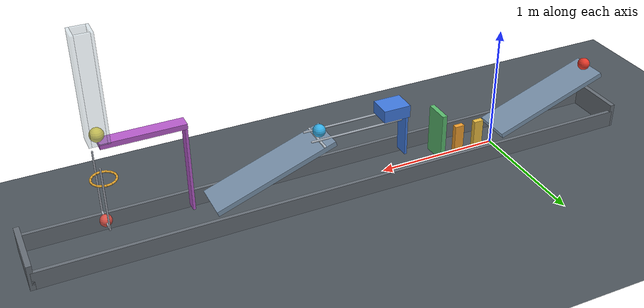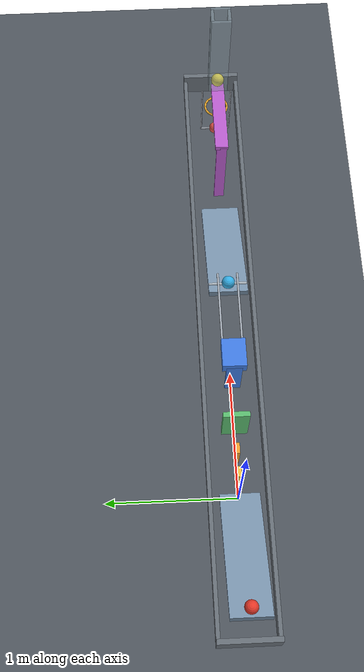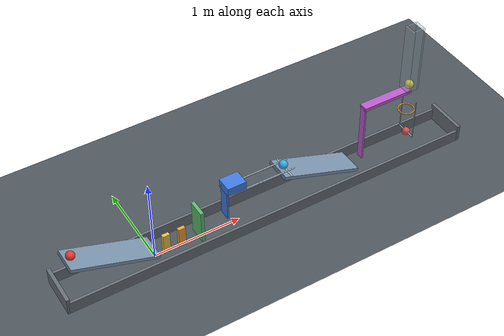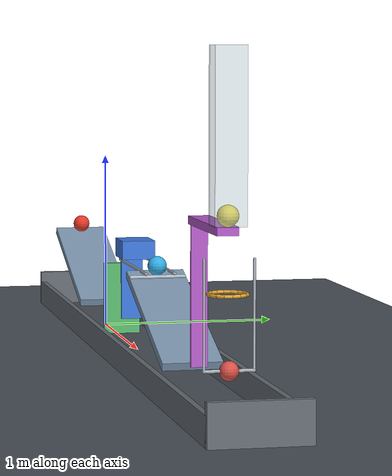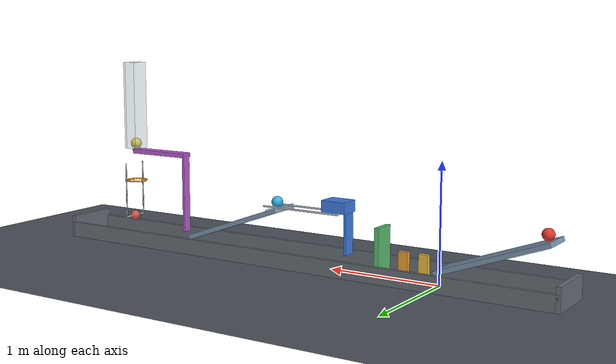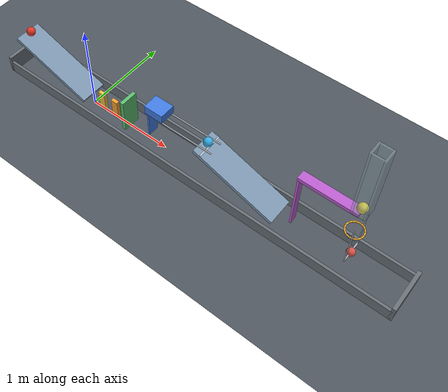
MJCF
<mujoco model="passive_chain_reaction">
  <compiler angle="degree" autolimits="true"/>
  <option timestep="0.002" gravity="0 0 -9.81" integrator="implicitfast" cone="elliptic" iterations="100"/>
  <size njmax="2000" nconmax="500"/>

  <!-- Sliding friction is 0.70. Contact damping approximates restitution 0.05. -->
  <!-- The smaller friction components are torsional and rolling friction. -->

  <worldbody>
    <light name="overhead_light" pos="1.3 -2 4" dir="0 0 -1" diffuse="0.8 0.8 0.8"/>
    <camera name="overview" pos="1.3 -5 2.5" xyaxes="1 0 0 0 0.36 0.933"/>

    <geom name="floor" type="plane" size="6 3 0.1" friction="0.70 0.005 0.001" solref="0.006 0.6901" solimp="0.95 0.99 0.001" rgba="0.30 0.33 0.36 1"/>

    <!-- Ramp coordinates refer to the center of its upper surface. -->
    <!-- The downhill edge of ramp1 is at x=0, z=0.15. -->
    <body name="ramp1" pos="-0.469846 0 0.321010" euler="0 20 0">
      <geom name="ramp1_surface" type="box" pos="0 0 -0.02" size="0.50 0.15 0.02" mass="0" friction="0.70 0.005 0.001" solref="0.006 0.6901" solimp="0.95 0.99 0.001" rgba="0.48 0.58 0.68 1"/>
    </body>

    <body name="ball1" pos="-0.875607 0 0.521904">
      <freejoint name="ball1_free"/>
      <geom name="ball1_sphere" type="sphere" size="0.05" mass="0.20" friction="0.70 0.005 0.001" solref="0.006 0.6901" solimp="0.95 0.99 0.001" rgba="0.90 0.22 0.16 1"/>
    </body>

    <!-- The first domino's upstream face is 0.10 m beyond ramp1. -->
    <body name="domino1" pos="0.14 0 0.12">
      <freejoint name="domino1_free"/>
      <geom name="domino1_box" type="box" size="0.04 0.02 0.12" mass="0.25" friction="0.70 0.005 0.001" solref="0.006 0.6901" solimp="0.95 0.99 0.001" rgba="0.92 0.74 0.25 1"/>
    </body>

    <body name="domino2" pos="0.32 0 0.12">
      <freejoint name="domino2_free"/>
      <geom name="domino2_box" type="box" size="0.04 0.02 0.12" mass="0.25" friction="0.70 0.005 0.001" solref="0.006 0.6901" solimp="0.95 0.99 0.001" rgba="0.94 0.62 0.18 1"/>
    </body>

    <!-- The flap is bottom-hinged and initially upright. -->
    <!-- Its upstream face is 0.18 m beyond domino2's center. -->
    <body name="flap1" pos="0.52 0 0.025">
      <joint name="flap1_hinge" type="hinge" axis="0 1 0" limited="true" range="0 65" damping="0.04" solreflimit="0.004 1" solimplimit="0.99 0.999 0.0001"/>
      <geom name="flap1_panel" type="box" pos="0 0 0.20" size="0.02 0.10 0.20" mass="0.30" friction="0.70 0.005 0.001" solref="0.006 0.6901" solimp="0.95 0.99 0.001" rgba="0.35 0.73 0.43 1"/>
    </body>

    <!-- A light, rigid striker extension connects the elevated cart to the flap. -->
    <!-- The prescribed cart box and its total moving mass remain 0.22 x 0.18 x 0.10 m and 0.50 kg. -->
    <body name="cart1" pos="0.94 0 0.55">
      <inertial pos="0 0 0" mass="0.50" diaginertia="0.001766667 0.002433333 0.003366667"/>
      <joint name="cart1_slide" type="slide" axis="1 0 0" limited="true" range="0 0.60" damping="0.20" solreflimit="0.004 1" solimplimit="0.99 0.999 0.0001"/>
      <geom name="cart1_box" type="box" size="0.11 0.09 0.05" mass="0" friction="0.70 0.005 0.001" solref="0.006 0.6901" solimp="0.95 0.99 0.001" rgba="0.25 0.48 0.88 1"/>
      <geom name="cart1_striker_extension" type="box" pos="-0.10 0 -0.20" size="0.01 0.06 0.20" mass="0" friction="0.70 0.005 0.001" solref="0.006 0.6901" solimp="0.95 0.99 0.001" rgba="0.25 0.48 0.88 1"/>
    </body>

    <body name="cart_rails" pos="0 0 0">
      <geom name="cart_rails_left" type="capsule" fromto="0.90 -0.075 0.488 1.64 -0.075 0.488" size="0.008" mass="0" friction="0.70 0.005 0.001" solref="0.006 0.6901" solimp="0.95 0.99 0.001" rgba="0.65 0.68 0.72 1"/>
      <geom name="cart_rails_right" type="capsule" fromto="0.90 0.075 0.488 1.64 0.075 0.488" size="0.008" mass="0" friction="0.70 0.005 0.001" solref="0.006 0.6901" solimp="0.95 0.99 0.001" rgba="0.65 0.68 0.72 1"/>
    </body>

    <!-- Cart1 first reaches ball2 at slide displacement 0.45 m. -->
    <!-- The small transverse bump retains ball2 until that contact. -->
    <!-- Ramp2's downhill edge is at x=2.425607, z=0.15. -->
    <body name="ramp2" pos="1.955761 0 0.321010" euler="0 20 0">
      <geom name="ramp2_surface" type="box" pos="0 0 -0.02" size="0.50 0.15 0.02" mass="0" friction="0.70 0.005 0.001" solref="0.006 0.6901" solimp="0.95 0.99 0.001" rgba="0.48 0.58 0.68 1"/>
      <geom name="ramp2_retaining_bump" type="capsule" fromto="-0.4133428 -0.14 0.0025 -0.4133428 0.14 0.0025" size="0.01" mass="0" friction="0.70 0.005 0.001" solref="0.006 0.6901" solimp="0.95 0.99 0.001" rgba="0.72 0.76 0.80 1"/>
    </body>

    <body name="ball2" pos="1.55 0 0.521904">
      <freejoint name="ball2_free"/>
      <geom name="ball2_sphere" type="sphere" size="0.05" mass="0.20" friction="0.70 0.005 0.001" solref="0.006 0.6901" solimp="0.95 0.99 0.001" rgba="0.20 0.68 0.90 1"/>
    </body>

    <!-- A downward trigger extension at the lever's left end receives ball2. -->
    <!-- Its upstream face is 0.12 m beyond ramp2's downhill edge. -->
    <!-- The elevated lever leaves room below ball3 for both ring and pendulum. -->
    <body name="lever1" pos="2.845607 0 0.85">
      <inertial pos="-0.0116 0 -0.014" mass="0.50" fullinertia="0.003635 0.019252 0.016420 0 -0.001949 0"/>
      <joint name="lever1_hinge" type="hinge" axis="0 -1 0" limited="true" range="0 45" damping="0.04" solreflimit="0.004 1" solimplimit="0.99 0.999 0.0001"/>
      <geom name="lever1_bar" type="box" size="0.30 0.05 0.02" mass="0" friction="0.70 0.005 0.001" solref="0.006 0.6901" solimp="0.95 0.99 0.001" rgba="0.72 0.36 0.80 1"/>
      <geom name="lever1_left_trigger" type="box" pos="-0.29 0 -0.35" size="0.01 0.04 0.35" mass="0" friction="0.70 0.005 0.001" solref="0.006 0.6901" solimp="0.95 0.99 0.001" rgba="0.72 0.36 0.80 1"/>
    </body>

    <body name="ball3" pos="3.145607 0 0.92">
      <freejoint name="ball3_free"/>
      <geom name="ball3_sphere" type="sphere" size="0.05" mass="0.20" friction="0.70 0.005 0.001" solref="0.006 0.6901" solimp="0.95 0.99 0.001" rgba="0.95 0.87 0.24 1"/>
    </body>

    <!-- A 0.104 m clear square guide limits lateral launch motion. -->
    <!-- Its lower edge is above the ring, leaving the falling passage open. -->
    <body name="launch_guide" pos="3.145607 0 1.275">
      <geom name="launch_guide_left" type="box" pos="-0.062 0 0" size="0.01 0.072 0.40" mass="0" friction="0.70 0.005 0.001" solref="0.006 0.6901" solimp="0.95 0.99 0.001" rgba="0.65 0.75 0.80 0.35"/>
      <geom name="launch_guide_right" type="box" pos="0.062 0 0" size="0.01 0.072 0.40" mass="0" friction="0.70 0.005 0.001" solref="0.006 0.6901" solimp="0.95 0.99 0.001" rgba="0.65 0.75 0.80 0.35"/>
      <geom name="launch_guide_front" type="box" pos="0 -0.062 0" size="0.052 0.01 0.40" mass="0" friction="0.70 0.005 0.001" solref="0.006 0.6901" solimp="0.95 0.99 0.001" rgba="0.65 0.75 0.80 0.35"/>
      <geom name="launch_guide_back" type="box" pos="0 0.062 0" size="0.052 0.01 0.40" mass="0" friction="0.70 0.005 0.001" solref="0.006 0.6901" solimp="0.95 0.99 0.001" rgba="0.65 0.75 0.80 0.35"/>
    </body>

    <!-- Capsule polygon with 0.16 m minimum clear diameter. -->
    <!-- Its horizontal center plane is 0.35 m below ball3's initial center. -->
    <body name="ring1" pos="3.145607 0 0.57">
      <geom name="ring1_segment01" type="capsule" fromto="0.089724 0 0 0.082894 0.034336 0" size="0.008" mass="0" friction="0.70 0.005 0.001" solref="0.006 0.6901" solimp="0.95 0.99 0.001" rgba="0.90 0.65 0.18 1"/>
      <geom name="ring1_segment02" type="capsule" fromto="0.082894 0.034336 0 0.063445 0.063445 0" size="0.008" mass="0" friction="0.70 0.005 0.001" solref="0.006 0.6901" solimp="0.95 0.99 0.001" rgba="0.90 0.65 0.18 1"/>
      <geom name="ring1_segment03" type="capsule" fromto="0.063445 0.063445 0 0.034336 0.082894 0" size="0.008" mass="0" friction="0.70 0.005 0.001" solref="0.006 0.6901" solimp="0.95 0.99 0.001" rgba="0.90 0.65 0.18 1"/>
      <geom name="ring1_segment04" type="capsule" fromto="0.034336 0.082894 0 0 0.089724 0" size="0.008" mass="0" friction="0.70 0.005 0.001" solref="0.006 0.6901" solimp="0.95 0.99 0.001" rgba="0.90 0.65 0.18 1"/>
      <geom name="ring1_segment05" type="capsule" fromto="0 0.089724 0 -0.034336 0.082894 0" size="0.008" mass="0" friction="0.70 0.005 0.001" solref="0.006 0.6901" solimp="0.95 0.99 0.001" rgba="0.90 0.65 0.18 1"/>
      <geom name="ring1_segment06" type="capsule" fromto="-0.034336 0.082894 0 -0.063445 0.063445 0" size="0.008" mass="0" friction="0.70 0.005 0.001" solref="0.006 0.6901" solimp="0.95 0.99 0.001" rgba="0.90 0.65 0.18 1"/>
      <geom name="ring1_segment07" type="capsule" fromto="-0.063445 0.063445 0 -0.082894 0.034336 0" size="0.008" mass="0" friction="0.70 0.005 0.001" solref="0.006 0.6901" solimp="0.95 0.99 0.001" rgba="0.90 0.65 0.18 1"/>
      <geom name="ring1_segment08" type="capsule" fromto="-0.082894 0.034336 0 -0.089724 0 0" size="0.008" mass="0" friction="0.70 0.005 0.001" solref="0.006 0.6901" solimp="0.95 0.99 0.001" rgba="0.90 0.65 0.18 1"/>
      <geom name="ring1_segment09" type="capsule" fromto="-0.089724 0 0 -0.082894 -0.034336 0" size="0.008" mass="0" friction="0.70 0.005 0.001" solref="0.006 0.6901" solimp="0.95 0.99 0.001" rgba="0.90 0.65 0.18 1"/>
      <geom name="ring1_segment10" type="capsule" fromto="-0.082894 -0.034336 0 -0.063445 -0.063445 0" size="0.008" mass="0" friction="0.70 0.005 0.001" solref="0.006 0.6901" solimp="0.95 0.99 0.001" rgba="0.90 0.65 0.18 1"/>
      <geom name="ring1_segment11" type="capsule" fromto="-0.063445 -0.063445 0 -0.034336 -0.082894 0" size="0.008" mass="0" friction="0.70 0.005 0.001" solref="0.006 0.6901" solimp="0.95 0.99 0.001" rgba="0.90 0.65 0.18 1"/>
      <geom name="ring1_segment12" type="capsule" fromto="-0.034336 -0.082894 0 0 -0.089724 0" size="0.008" mass="0" friction="0.70 0.005 0.001" solref="0.006 0.6901" solimp="0.95 0.99 0.001" rgba="0.90 0.65 0.18 1"/>
      <geom name="ring1_segment13" type="capsule" fromto="0 -0.089724 0 0.034336 -0.082894 0" size="0.008" mass="0" friction="0.70 0.005 0.001" solref="0.006 0.6901" solimp="0.95 0.99 0.001" rgba="0.90 0.65 0.18 1"/>
      <geom name="ring1_segment14" type="capsule" fromto="0.034336 -0.082894 0 0.063445 -0.063445 0" size="0.008" mass="0" friction="0.70 0.005 0.001" solref="0.006 0.6901" solimp="0.95 0.99 0.001" rgba="0.90 0.65 0.18 1"/>
      <geom name="ring1_segment15" type="capsule" fromto="0.063445 -0.063445 0 0.082894 -0.034336 0" size="0.008" mass="0" friction="0.70 0.005 0.001" solref="0.006 0.6901" solimp="0.95 0.99 0.001" rgba="0.90 0.65 0.18 1"/>
      <geom name="ring1_segment16" type="capsule" fromto="0.082894 -0.034336 0 0.089724 0 0" size="0.008" mass="0" friction="0.70 0.005 0.001" solref="0.006 0.6901" solimp="0.95 0.99 0.001" rgba="0.90 0.65 0.18 1"/>
    </body>

    <!-- The forked rigid pendulum keeps its suspension out of the falling path. -->
    <!-- Pivot-to-bob distance is 0.50 m; all pendulum geoms together weigh 0.35 kg. -->
    <!-- The slight horizontal offset gives the falling ball an oblique bob impact. -->
    <!-- Nominal first contact occurs with ball3's center at z=0.32. -->
    <body name="pendulum1" pos="3.175607 0 0.729861">
      <joint name="pendulum1_hinge" type="hinge" axis="0 1 0" damping="0.04"/>
      <geom name="pendulum1_left_rod" type="capsule" fromto="0 -0.115 0 0 -0.115 -0.50" size="0.006" mass="0.015" friction="0.70 0.005 0.001" solref="0.006 0.6901" solimp="0.95 0.99 0.001" rgba="0.68 0.70 0.74 1"/>
      <geom name="pendulum1_right_rod" type="capsule" fromto="0 0.115 0 0 0.115 -0.50" size="0.006" mass="0.015" friction="0.70 0.005 0.001" solref="0.006 0.6901" solimp="0.95 0.99 0.001" rgba="0.68 0.70 0.74 1"/>
      <geom name="pendulum1_left_bridge" type="capsule" fromto="0 -0.115 -0.50 0 0 -0.50" size="0.008" mass="0.005" friction="0.70 0.005 0.001" solref="0.006 0.6901" solimp="0.95 0.99 0.001" rgba="0.68 0.70 0.74 1"/>
      <geom name="pendulum1_right_bridge" type="capsule" fromto="0 0.115 -0.50 0 0 -0.50" size="0.008" mass="0.005" friction="0.70 0.005 0.001" solref="0.006 0.6901" solimp="0.95 0.99 0.001" rgba="0.68 0.70 0.74 1"/>
      <geom name="pendulum1_bob" type="sphere" pos="0 0 -0.50" size="0.045" mass="0.31" friction="0.70 0.005 0.001" solref="0.006 0.6901" solimp="0.95 0.99 0.001" rgba="0.85 0.32 0.28 1"/>
    </body>

    <!-- Low containment walls collect spent balls without driving the sequence. -->
    <body name="catch_fence" pos="0 0 0">
      <geom name="catch_fence_left" type="box" pos="-1.05 0 0.10" size="0.02 0.235 0.10" mass="0" friction="0.70 0.005 0.001" solref="0.006 0.6901" solimp="0.95 0.99 0.001" rgba="0.40 0.43 0.46 1"/>
      <geom name="catch_fence_right" type="box" pos="3.75 0 0.10" size="0.02 0.235 0.10" mass="0" friction="0.70 0.005 0.001" solref="0.006 0.6901" solimp="0.95 0.99 0.001" rgba="0.40 0.43 0.46 1"/>
      <geom name="catch_fence_front" type="box" pos="1.35 -0.22 0.07" size="2.40 0.015 0.07" mass="0" friction="0.70 0.005 0.001" solref="0.006 0.6901" solimp="0.95 0.99 0.001" rgba="0.40 0.43 0.46 1"/>
      <geom name="catch_fence_back" type="box" pos="1.35 0.22 0.07" size="2.40 0.015 0.07" mass="0" friction="0.70 0.005 0.001" solref="0.006 0.6901" solimp="0.95 0.99 0.001" rgba="0.40 0.43 0.46 1"/>
    </body>
  </worldbody>

  <contact>
    <!-- The guide constrains the ball, not the rotating launcher underneath it. -->
    <exclude name="launcher_guide_clearance" body1="lever1" body2="launch_guide"/>
  </contact>

  <keyframe>
    <!-- Unspecified qpos uses the model's initial poses; unspecified qvel is zero. -->
    <key name="start" time="0"/>
  </keyframe>
</mujoco>
